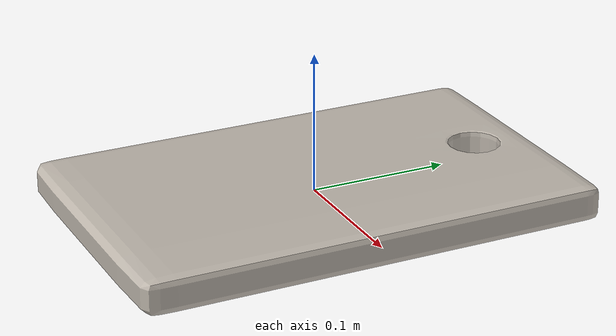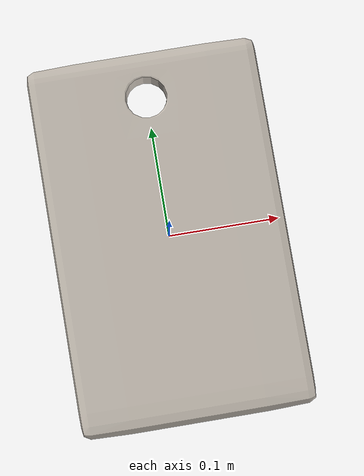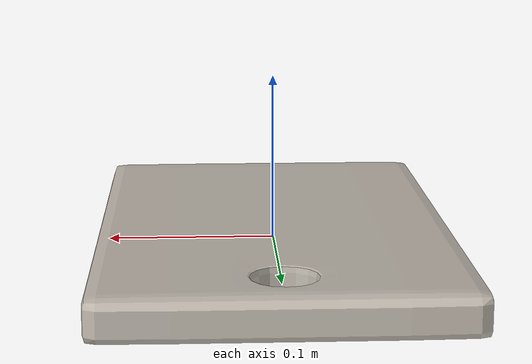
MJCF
<mujoco model="cutting_board_16">
  <default>
    <default class="placepoint">
      <site type="sphere" size="0.01" group="2" rgba="0 0 1 0"/>
    </default>
</default>
<asset>

    <mesh file="visual/model_normalized_0.obj" name="model_normalized_0_vis" scale="0.33750 0.33750 0.33750" refquat="0.7071067811865475 0.7071067811865475 0.0 0.0" />
    <texture type="2d" name="image0" file="visual/image0.png" />
    <material name="Scene_-_Root.008" texture="image0" specular="0.5" shininess="0.25" />
  </asset>
  <worldbody>
  <body>
      <body name="object">
        <geom solimp="0.998 0.998 0.001" solref="0.001 1" density="100" friction="0.95 0.3 0.1" type="mesh" mesh="model_normalized_0_vis" conaffinity="0" contype="0" group="1" material="Scene_-_Root.008" />
        <geom solimp="0.998 0.998 0.001" solref="0.001 1" density="100" friction="0.95 0.3 0.1" type="box" group="0" rgba="0.8 0.8 0.8 0.0" size="0.10512 0.16875 0.01267" pos="-0.00002 0.00056 0.00000" />
        </body>
      <site rgba="0 0 0 0" size="0.005" pos="-0.00002 0.00056 -0.01267" name="bottom_site" />
      <site rgba="0 0 0 0" size="0.005" pos="-0.00002 0.00056 0.01267" name="top_site" />
      <site rgba="0 0 0 0" size="0.005" pos="0.05512 0.08875 0.00000" name="horizontal_radius_site" />
        <site class="placepoint" pos="0 0 0.1"/>
        </body>
    </worldbody>
</mujoco>
